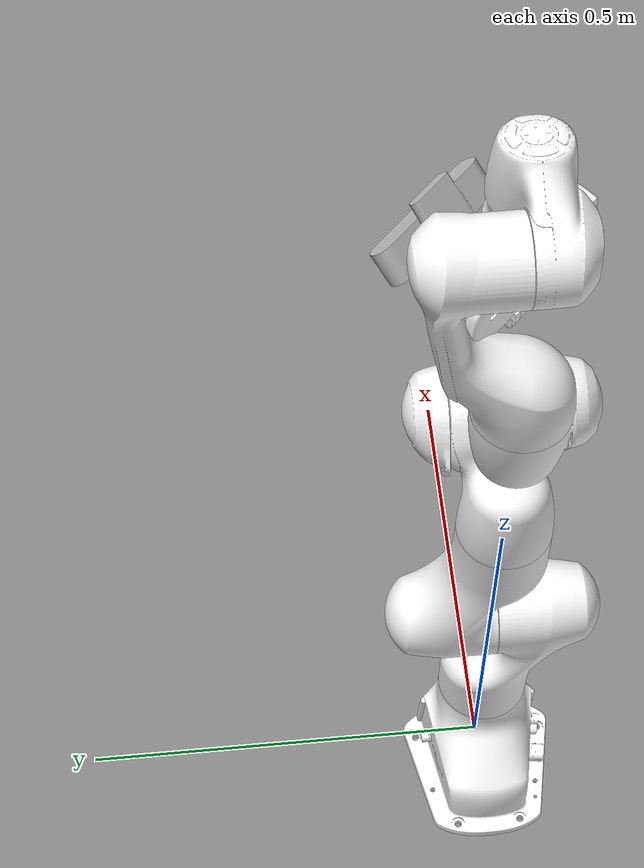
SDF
<?xml version="1.0"?>
<sdf version="1.7">
  <model name="panda_arm_namespaced">
    <!-- Fix To World -->
    <joint name="panda_joint_world" type="fixed">
        <parent>world</parent>
        <child>panda_link0</child>
    </joint>
    <!-- Arm Links -->
    <link name="panda_link0">
      <visual name="panda_link0_visual">
        <geometry>
          <mesh>
            <uri>meshes/visual/link0.dae</uri>
          </mesh>
        </geometry>
        <material>
          <diffuse>1.0 1.0 1.0</diffuse>
          <specular>1.0 1.0 1.0</specular>
          <pbr>
            <metal>
              <albedo_map>materials/textures/link0_link0_BaseColor.png</albedo_map>
              <normal_map>materials/textures/link0_link0_Normal.png</normal_map>
              <metalness_map>materials/textures/link0_link0_Metallic.png</metalness_map>
              <roughness_map>materials/textures/link0_link0_Roughness.png</roughness_map>
              <environment_map>https://fuel.ignitionrobotics.org/1.0/openrobotics/models/Reflective table/1/files/materials/textures/DepotEnvMap.dds</environment_map>
            </metal>
          </pbr>
        </material>
      </visual>
      <collision name="panda_link0_collision">
          <geometry>
              <mesh>
                  <uri>meshes/collision/link0.stl</uri>
              </mesh>
          </geometry>
          <surface>
              <friction>
                  <ode>
                      <mu>1.05</mu>
                      <mu2>1.05</mu2>
                  </ode>
              </friction>
          </surface>
      </collision>
      <inertial>
          <pose>-0.025566 -2.87883e-05 0.057332 0 0 0</pose>
          <mass>2.814271300104062</mass>
          <inertia>
              <ixx>0.0075390636364814695</ixx>
              <iyy>0.010508017427382959</iyy>
              <izz>0.009864933638708275</izz>
              <ixy>-1.5053124574783335e-05</ixy>
              <ixz>-0.0012144328835738973</ixz>
              <iyz>1.0434803501032979e-05</iyz>
          </inertia>
      </inertial>
    </link>
    <link name="panda_link1">
        <pose relative_to="panda_joint1">0 0 0 0 0 0</pose>
        <visual name="panda_link1_visual">
            <geometry>
                <mesh>
                    <uri>meshes/visual/link1.dae</uri>
                </mesh>
            </geometry>
        <material>
          <diffuse>1.0 1.0 1.0</diffuse>
          <specular>1.0 1.0 1.0</specular>
          <pbr>
            <metal>
              <albedo_map>materials/textures/link1_link1_BaseColor.png</albedo_map>
              <normal_map>materials/textures/link1_link1_Normal.png</normal_map>
              <roughness_map>materials/textures/link1_link1_Roughness.png</roughness_map>
              <environment_map>https://fuel.ignitionrobotics.org/1.0/openrobotics/models/Reflective table/1/files/materials/textures/DepotEnvMap.dds</environment_map>
              <metalness>0.1</metalness>
            </metal>
          </pbr>
        </material>
        </visual>
        <collision name="panda_link1_collision">
            <geometry>
                <mesh>
                    <uri>meshes/collision/link1.stl</uri>
                </mesh>
            </geometry>
            <surface>
                <friction>
                    <ode>
                        <mu>1.05</mu>
                        <mu2>1.05</mu2>
                    </ode>
                </friction>
            </surface>
        </collision>
        <inertial>
            <pose>-3.72212e-09 -0.0324958 -0.0675818 0 0 0</pose>
            <mass>2.6433170427227215</mass>
            <inertia>
                <ixx>0.017405076982879724</ixx>
                <iyy>0.015352077935781732</iyy>
                <izz>0.005987891663073857</izz>
                <ixy>-8.687986369621078e-09</ixy>
                <ixz>-1.6277819062920423e-08</ixz>
                <iyz>0.004510855959102245</iyz>
            </inertia>
        </inertial>
    </link>
    <link name="panda_link2">
        <pose relative_to="panda_joint2">0 0 0 0 0 0</pose>
        <visual name="panda_link2_visual">
            <geometry>
                <mesh>
                    <uri>meshes/visual/link2.dae</uri>
                </mesh>
            </geometry>
        <material>
          <diffuse>1.0 1.0 1.0</diffuse>
          <specular>1.0 1.0 1.0</specular>
          <pbr>
            <metal>
              <albedo_map>materials/textures/link2_link2_BaseColor.png</albedo_map>
              <normal_map>materials/textures/link2_link2_Normal.png</normal_map>
              <roughness_map>materials/textures/link2_link2_Roughness.png</roughness_map>
              <environment_map>https://fuel.ignitionrobotics.org/1.0/openrobotics/models/Reflective table/1/files/materials/textures/DepotEnvMap.dds</environment_map>
              <metalness>0.1</metalness>
            </metal>
          </pbr>
        </material>
        </visual>
        <collision name="panda_link2_collision">
            <geometry>
                <mesh>
                    <uri>meshes/collision/link2.stl</uri>
                </mesh>
            </geometry>
            <surface>
                <friction>
                    <ode>
                        <mu>1.05</mu>
                        <mu2>1.05</mu2>
                    </ode>
                </friction>
            </surface>
        </collision>
        <inertial>
            <pose>3.17833e-07 -0.06861 0.0322285 0 0 0</pose>
            <mass>2.6652755331661186</mass>
            <inertia>
                <ixx>0.01778694005635383</ixx>
                <iyy>0.006044133867952844</iyy>
                <izz>0.01571095500455695</izz>
                <ixy>8.70635625879119e-08</ixy>
                <ixz>3.752072058394008e-08</ixz>
                <iyz>-0.004599490295490376</iyz>
            </inertia>
        </inertial>
    </link>
    <link name="panda_link3">
        <pose relative_to="panda_joint3">0 0 0 0 0 0</pose>
        <visual name="panda_link3_visual">
            <geometry>
                <mesh>
                    <uri>meshes/visual/link3.dae</uri>
                </mesh>
            </geometry>
        <material>
          <diffuse>1.0 1.0 1.0</diffuse>
          <specular>1.0 1.0 1.0</specular>
          <pbr>
            <metal>
              <albedo_map>materials/textures/link3_link3_BaseColor.png</albedo_map>
              <normal_map>materials/textures/link3_link3_Normal.png</normal_map>
              <roughness_map>materials/textures/link3_link3_Roughness.png</roughness_map>
              <environment_map>https://fuel.ignitionrobotics.org/1.0/openrobotics/models/Reflective table/1/files/materials/textures/DepotEnvMap.dds</environment_map>
              <metalness>0.1</metalness>
            </metal>
          </pbr>
        </material>
        </visual>
        <collision name="panda_link3_collision">
            <geometry>
                <mesh>
                    <uri>meshes/collision/link3.stl</uri>
                </mesh>
            </geometry>
            <surface>
                <friction>
                    <ode>
                        <mu>1.05</mu>
                        <mu2>1.05</mu2>
                    </ode>
                </friction>
            </surface>
        </collision>
        <inertial>
            <pose>0.0469893 0.0316374 -0.031704 0 0 0</pose>
            <mass>2.3293714829045733</mass>
            <inertia>
                <ixx>0.0075496764161139766</ixx>
                <iyy>0.009680676080191398</iyy>
                <izz>0.007944557422008086</izz>
                <ixy>-0.0024320464513492225</ixy>
                <ixz>-0.003250815048103007</ixz>
                <iyz>-0.0021316282421730694</iyz>
            </inertia>
        </inertial>
    </link>
    <link name="panda_link4">
        <pose relative_to="panda_joint4">0 0 0 0 0 0</pose>
        <visual name="panda_link4_visual">
            <geometry>
                <mesh>
                    <uri>meshes/visual/link4.dae</uri>
                </mesh>
            </geometry>
        <material>
          <diffuse>1.0 1.0 1.0</diffuse>
          <specular>1.0 1.0 1.0</specular>
          <pbr>
            <metal>
              <albedo_map>materials/textures/link4_link4_BaseColor.png</albedo_map>
              <normal_map>materials/textures/link4_link4_Normal.png</normal_map>
              <roughness_map>materials/textures/link4_link4_Roughness.png</roughness_map>
              <environment_map>https://fuel.ignitionrobotics.org/1.0/openrobotics/models/Reflective table/1/files/materials/textures/DepotEnvMap.dds</environment_map>
              <metalness>0.1</metalness>
            </metal>
          </pbr>
        </material>
        </visual>
        <collision name="panda_link4_collision">
            <geometry>
                <mesh>
                    <uri>meshes/collision/link4.stl</uri>
                </mesh>
            </geometry>
            <surface>
                <friction>
                    <ode>
                        <mu>1.05</mu>
                        <mu2>1.05</mu2>
                    </ode>
                </friction>
            </surface>
        </collision>
        <inertial>
            <pose>-0.0360505 0.0337069 0.0319019 0 0 0</pose>
            <mass>2.3104763646281508</mass>
            <inertia>
                <ixx>0.007764568814864828</ixx>
                <iyy>0.008015776929980149</iyy>
                <izz>0.009955882308071066</izz>
                <ixy>0.003371475204045935</ixy>
                <ixz>-0.002343621113168248</ixz>
                <iyz>0.0022917526161470624</iyz>
            </inertia>
        </inertial>
    </link>
    <link name="panda_link5">
        <pose relative_to="panda_joint5">0 0 0 0 0 0</pose>
        <visual name="panda_link5_visual">
            <geometry>
                <mesh>
                    <uri>meshes/visual/link5.dae</uri>
                </mesh>
            </geometry>
        <material>
          <diffuse>1.0 1.0 1.0</diffuse>
          <specular>1.0 1.0 1.0</specular>
          <pbr>
            <metal>
              <albedo_map>materials/textures/link5_link5_BaseColor.png</albedo_map>
              <normal_map>materials/textures/link5_link5_Normal.png</normal_map>
              <roughness_map>materials/textures/link5_link5_Roughness.png</roughness_map>
              <environment_map>https://fuel.ignitionrobotics.org/1.0/openrobotics/models/Reflective table/1/files/materials/textures/DepotEnvMap.dds</environment_map>
              <metalness>0.1</metalness>
            </metal>
          </pbr>
        </material>
        </visual>
        <collision name="panda_link5_collision">
            <geometry>
                <mesh>
                    <uri>meshes/collision/link5.stl</uri>
                </mesh>
            </geometry>
            <surface>
                <friction>
                    <ode>
                        <mu>1.05</mu>
                        <mu2>1.05</mu2>
                    </ode>
                </friction>
            </surface>
        </collision>
        <inertial>
            <pose>-6.12525e-06 0.0610427 -0.104176 0 0 0</pose>
            <mass>2.6226426154892004</mass>
            <inertia>
                <ixx>0.029070538014399377</ixx>
                <iyy>0.027638529986528795</iyy>
                <izz>0.004251111234400737</izz>
                <ixy>6.208738268725568e-07</ixy>
                <ixz>-1.0059151925023392e-05</ixz>
                <iyz>-0.007424306477850814</iyz>
            </inertia>
        </inertial>
    </link>
    <link name="panda_link6">
        <pose relative_to="panda_joint6">0 0 0 0 0 0</pose>
        <visual name="panda_link6_visual">
            <geometry>
                <mesh>
                    <uri>meshes/visual/link6.dae</uri>
                </mesh>
            </geometry>
        <material>
          <diffuse>1.0 1.0 1.0</diffuse>
          <specular>1.0 1.0 1.0</specular>
          <pbr>
            <metal>
              <albedo_map>materials/textures/link6_link6_BaseColor.png</albedo_map>
              <normal_map>materials/textures/link6_link6_Normal.png</normal_map>
              <roughness_map>materials/textures/link6_link6_Roughness.png</roughness_map>
              <environment_map>https://fuel.ignitionrobotics.org/1.0/openrobotics/models/Reflective table/1/files/materials/textures/DepotEnvMap.dds</environment_map>
              <metalness>0.1</metalness>
            </metal>
          </pbr>
        </material>
        </visual>
        <collision name="panda_link6_collision">
            <geometry>
                <mesh>
                    <uri>meshes/collision/link6.stl</uri>
                </mesh>
            </geometry>
            <surface>
                <friction>
                    <ode>
                        <mu>1.05</mu>
                        <mu2>1.05</mu2>
                    </ode>
                </friction>
            </surface>
        </collision>
        <inertial>
            <pose>0.051051 0.00910797 0.0106343 0 0 0</pose>
            <mass>1.5025804886626795</mass>
            <inertia>
                <ixx>0.002940555801469018</ixx>
                <iyy>0.00392105201248677</iyy>
                <izz>0.0054115603870960195</izz>
                <ixy>-0.00042391108351381507</ixy>
                <ixz>0.000610007735338717</ixz>
                <iyz>0.00012647545430836214</iyz>
            </inertia>
        </inertial>
    </link>
    <link name="panda_link7">
        <pose relative_to="panda_joint7">0 0 0 0 0 0</pose>
        <visual name="panda_link7_visual">
            <geometry>
                <mesh>
                    <uri>meshes/visual/link7.dae</uri>
                </mesh>
            </geometry>
        <material>
          <diffuse>1.0 1.0 1.0</diffuse>
          <specular>1.0 1.0 1.0</specular>
          <pbr>
            <metal>
              <albedo_map>materials/textures/link7_link7_BaseColor.png</albedo_map>
              <normal_map>materials/textures/link7_link7_Normal.png</normal_map>
              <metalness_map>materials/textures/link7_link7_Metallic.png</metalness_map>
              <roughness_map>materials/textures/link7_link7_Roughness.png</roughness_map>
              <environment_map>https://fuel.ignitionrobotics.org/1.0/openrobotics/models/Reflective table/1/files/materials/textures/DepotEnvMap.dds</environment_map>
            </metal>
          </pbr>
        </material>
        </visual>
        <collision name="panda_link7_collision">
            <geometry>
                <mesh>
                    <uri>meshes/collision/link7.stl</uri>
                </mesh>
            </geometry>
            <surface>
                <friction>
                    <ode>
                        <mu>1.05</mu>
                        <mu2>1.05</mu2>
                    </ode>
                </friction>
            </surface>
        </collision>
        <inertial>
            <pose>0.0109695 0.0107965 0.0650412 0 0 0</pose>
            <mass>0.5237668134788256</mass>
            <inertia>
                <ixx>0.0008621467959726535</ixx>
                <iyy>0.0008613100184801048</iyy>
                <izz>0.0006961139396618219</izz>
                <ixy>-0.00011871071570425467</ixy>
                <ixz>3.866602604509339e-05</ixz>
                <iyz>-9.057841649422724e-05</iyz>
            </inertia>
        </inertial>
    </link>
    <!-- Arm Joints -->
    <joint name="panda_joint1" type="revolute">
        <pose relative_to="panda_link0">0 0 0.333 0 0 0</pose>
        <parent>panda_link0</parent>
        <child>panda_link1</child>
        <axis>
            <xyz>0 0 1</xyz>
            <limit>
                <effort>87</effort>
                <lower>-2.897246558310587</lower>
                <upper>2.897246558310587</upper>
                <velocity>2.617993877991494</velocity>
            </limit>
            <dynamics>
                <spring_reference>0</spring_reference>
                <spring_stiffness>0</spring_stiffness>
                <damping>21.75</damping>
                <friction>3.48</friction>
            </dynamics>
        </axis>
    </joint>
    <joint name="panda_joint2" type="revolute">
        <pose relative_to="panda_link1">0 0 0 -1.570796326794897 0 0</pose>
        <parent>panda_link1</parent>
        <child>panda_link2</child>
        <axis>
            <xyz>0 0 1</xyz>
            <limit>
                <effort>87</effort>
                <lower>-1.762782544514273</lower>
                <upper>1.762782544514273</upper>
                <velocity>2.617993877991494</velocity>
            </limit>
            <dynamics>
                <spring_reference>0</spring_reference>
                <spring_stiffness>0</spring_stiffness>
                <damping>21.75</damping>
                <friction>3.48</friction>
            </dynamics>
        </axis>
    </joint>
    <joint name="panda_joint3" type="revolute">
        <pose relative_to="panda_link2">0 -0.316 0 1.570796326794897 0 0</pose>
        <parent>panda_link2</parent>
        <child>panda_link3</child>
        <axis>
            <xyz>0 0 1</xyz>
            <limit>
                <effort>87</effort>
                <lower>-2.897246558310587</lower>
                <upper>2.897246558310587</upper>
                <velocity>2.617993877991494</velocity>
            </limit>
            <dynamics>
                <spring_reference>0</spring_reference>
                <spring_stiffness>0</spring_stiffness>
                <damping>21.75</damping>
                <friction>3.48</friction>
            </dynamics>
        </axis>
    </joint>
    <joint name="panda_joint4" type="revolute">
        <pose relative_to="panda_link3">0.0825 0 0 1.570796326794897 0 0</pose>
        <parent>panda_link3</parent>
        <child>panda_link4</child>
        <axis>
            <xyz>0 0 1</xyz>
            <limit>
                <effort>87</effort>
                <lower>-3.07177948351002</lower>
                <upper>-0.06981317007977318</upper>
                <velocity>2.617993877991494</velocity>
            </limit>
            <dynamics>
                <spring_reference>0</spring_reference>
                <spring_stiffness>0</spring_stiffness>
                <damping>21.75</damping>
                <friction>3.48</friction>
            </dynamics>
        </axis>
    </joint>
    <joint name="panda_joint5" type="revolute">
        <pose relative_to="panda_link4">-0.0825 0.384 0 -1.570796326794897 0 0</pose>
        <parent>panda_link4</parent>
        <child>panda_link5</child>
        <axis>
            <xyz>0 0 1</xyz>
            <limit>
                <effort>12</effort>
                <lower>-2.897246558310587</lower>
                <upper>2.897246558310587</upper>
                <velocity>3.141592653589793</velocity>
            </limit>
            <dynamics>
                <spring_reference>0</spring_reference>
                <spring_stiffness>0</spring_stiffness>
                <damping>3.0</damping>
                <friction>0.48</friction>
            </dynamics>
        </axis>
    </joint>
    <joint name="panda_joint6" type="revolute">
        <pose relative_to="panda_link5">0 0 0 1.570796326794897 0 0</pose>
        <parent>panda_link5</parent>
        <child>panda_link6</child>
        <axis>
            <xyz>0 0 1</xyz>
            <limit>
                <effort>12</effort>
                <lower>-0.0174532925199433</lower>
                <upper>3.752457891787809</upper>
                <velocity>3.141592653589793</velocity>
            </limit>
            <dynamics>
                <spring_reference>0</spring_reference>
                <spring_stiffness>0</spring_stiffness>
                <damping>3.0</damping>
                <friction>0.48</friction>
            </dynamics>
        </axis>
    </joint>
    <joint name="panda_joint7" type="revolute">
        <pose relative_to="panda_link6">0.088 0 0 1.570796326794897 0 0</pose>
        <parent>panda_link6</parent>
        <child>panda_link7</child>
        <axis>
            <xyz>0 0 1</xyz>
            <limit>
                <effort>12</effort>
                <lower>-2.897246558310587</lower>
                <upper>2.897246558310587</upper>
                <velocity>3.141592653589793</velocity>
            </limit>
            <dynamics>
                <spring_reference>0</spring_reference>
                <spring_stiffness>0</spring_stiffness>
                <damping>3.0</damping>
                <friction>0.48</friction>
            </dynamics>
        </axis>
    </joint>
    <!-- Arm-Hand Fixed Joint -->
    <joint name="panda_hand_joint" type="fixed">
        <pose relative_to="panda_link7">0 0 0.107 0 0 -0.7853981633974483</pose>
        <parent>panda_link7</parent>
        <child>panda_hand</child>
    </joint>
    <!-- Hand Links -->
    <link name="panda_hand">
      <pose relative_to="panda_hand_joint">0 0 0 0 0 0</pose>
      <visual name="panda_hand_visual">
        <pose>0 0 0 0 0 0</pose>
        <geometry>
          <mesh>
            <uri>meshes/visual/hand.dae</uri>
          </mesh>
        </geometry>
        <material>
          <diffuse>1.0 1.0 1.0</diffuse>
          <specular>1.0 1.0 1.0</specular>
          <pbr>
            <metal>
              <albedo_map>materials/textures/hand_hand_BaseColor.png</albedo_map>
              <normal_map>materials/textures/hand_hand_Normal.png</normal_map>
              <roughness_map>materials/textures/hand_hand_Roughness.png</roughness_map>
              <environment_map>https://fuel.ignitionrobotics.org/1.0/openrobotics/models/Reflective table/1/files/materials/textures/DepotEnvMap.dds</environment_map>
              <metalness>0.1</metalness>
            </metal>
          </pbr>
        </material>
        </visual>
        <collision name="panda_hand_collision">
          <pose>0 0 0 0 0 0</pose>
          <geometry>
            <mesh>
              <uri>meshes/collision/hand.stl</uri>
            </mesh>
          </geometry>
          <surface>
              <friction>
                  <ode>
                      <mu>1.05</mu>
                      <mu2>1.05</mu2>
                  </ode>
              </friction>
          </surface>
        </collision>
        <inertial>
            <pose>-6.7624e-06 0.00152435 0.0275912 0 0 0</pose>
            <mass>0.14060765127978503</mass>
            <inertia>
                <ixx>0.0005365450414352072</ixx>
                <iyy>7.70511954783727e-05</iyy>
                <izz>0.0004938176882694914</izz>
                <ixy>1.7911952957732454e-08</ixy>
                <ixz>-2.320071910601251e-08</ixz>
                <iyz>4.681149945315967e-08</iyz>
            </inertia>
        </inertial>
    </link>
    <link name="panda_leftfinger">
        <pose relative_to="panda_finger_joint1">0 0 0 0 0 0</pose>
        <visual name="panda_leftfinger_visual">
            <geometry>
                <mesh>
                    <uri>meshes/visual/finger.dae</uri>
                </mesh>
            </geometry>
        <material>
          <diffuse>1.0 1.0 1.0</diffuse>
          <specular>1.0 1.0 1.0</specular>
          <pbr>
            <metal>
              <albedo_map>materials/textures/finger_finger_BaseColor.png</albedo_map>
              <normal_map>materials/textures/finger_finger_Normal.png</normal_map>
              <metalness_map>materials/textures/finger_finger_Metallic.png</metalness_map>
              <roughness_map>materials/textures/finger_finger_Roughness.png</roughness_map>
              <environment_map>https://fuel.ignitionrobotics.org/1.0/openrobotics/models/Reflective table/1/files/materials/textures/DepotEnvMap.dds</environment_map>
            </metal>
          </pbr>
        </material>
        </visual>
        <collision name="panda_leftfinger_collision">
            <geometry>
                <mesh>
                    <uri>meshes/collision/finger.stl</uri>
                </mesh>
            </geometry>
            <surface>
                <friction>
                    <ode>
                        <mu>2.15</mu>
                        <mu2>2.15</mu2>
                    </ode>
                </friction>
            </surface>
        </collision>
        <inertial>
            <pose>-6.2561e-06 0.00227781 -0.0277116 0 0 0</pose>
            <mass>0.2238453537819424</mass>
            <inertia>
                <ixx>6.74804167363695e-05</ixx>
                <iyy>6.627189221641395e-05</iyy>
                <izz>1.550396267804825e-05</izz>
                <ixy>-4.1027443646025676e-09</ixy>
                <ixz>1.8693673970152995e-08</ixz>
                <iyz>1.1967548474390802e-05</iyz>
            </inertia>
        </inertial>
    </link>
    <link name="panda_rightfinger">
        <pose relative_to="panda_finger_joint2">0 0 0 0 0 0</pose>
        <visual name="panda_rightfinger_visual">
            <pose>0 0 0 0 0 3.141592653589793</pose>
            <geometry>
                <mesh>
                    <uri>meshes/visual/finger.dae</uri>
                </mesh>
            </geometry>
        <material>
          <diffuse>1.0 1.0 1.0</diffuse>
          <specular>1.0 1.0 1.0</specular>
          <pbr>
            <metal>
              <albedo_map>materials/textures/finger_finger_BaseColor.png</albedo_map>
              <normal_map>materials/textures/finger_finger_Normal.png</normal_map>
              <roughness_map>materials/textures/finger_finger_Roughness.png</roughness_map>
              <environment_map>https://fuel.ignitionrobotics.org/1.0/openrobotics/models/Reflective table/1/files/materials/textures/DepotEnvMap.dds</environment_map>
              <metalness>0.1</metalness>
            </metal>
          </pbr>
        </material>
        </visual>
        <collision name="panda_rightfinger_collision">
            <pose>0 0 0 0 0 3.141592653589793</pose>
            <geometry>
                <mesh>
                    <uri>meshes/collision/finger.stl</uri>
                </mesh>
            </geometry>
            <surface>
                <friction>
                    <ode>
                        <mu>2.15</mu>
                        <mu2>2.15</mu2>
                    </ode>
                </friction>
            </surface>
        </collision>
        <inertial>
            <pose>-6.2561e-06 0.00227781 -0.0277116 0 0 3.141592653589793</pose>
            <mass>0.2238453537819424</mass>
            <inertia>
                <ixx>6.74804167363695e-05</ixx>
                <iyy>6.627189221641395e-05</iyy>
                <izz>1.550396267804825e-05</izz>
                <ixy>-4.1027443646025676e-09</ixy>
                <ixz>1.8693673970152995e-08</ixz>
                <iyz>1.1967548474390802e-05</iyz>
            </inertia>
        </inertial>
    </link>
    <!-- Finger Joints -->
    <joint name="panda_finger_joint1" type="prismatic">
        <pose relative_to="panda_hand">0 0 0.0584 0 0 0</pose>
        <parent>panda_hand</parent>
        <child>panda_leftfinger</child>
        <axis>
            <xyz>0 1 0</xyz>
            <limit>
                <effort>20</effort>
                <lower>0.0</lower>
                <upper>0.04</upper>
                <velocity>0.2</velocity>
            </limit>
            <dynamics>
                <spring_reference>0</spring_reference>
                <spring_stiffness>0</spring_stiffness>
                <damping>10</damping>
                <friction>0.5</friction>
            </dynamics>
        </axis>
    </joint>
    <joint name="panda_finger_joint2" type="prismatic">
        <pose relative_to="panda_hand">0 0 0.0584 0 0 0</pose>
        <parent>panda_hand</parent>
        <child>panda_rightfinger</child>
        <axis>
            <xyz>0 -1 0</xyz>
            <limit>
                <effort>20</effort>
                <lower>0.0</lower>
                <upper>0.04</upper>
                <velocity>0.2</velocity>
            </limit>
            <dynamics>
                <spring_reference>0</spring_reference>
                <spring_stiffness>0</spring_stiffness>
                <damping>10</damping>
                <friction>0.5</friction>
            </dynamics>
        </axis>
    </joint>
    <!-- End-effector -->
    <link name="panda_link8">
        <pose relative_to="end_effector_frame_fixed_joint">0 0 0 0 0 0</pose>
    </link>
    <joint name="end_effector_frame_fixed_joint" type="fixed">
        <pose relative_to="panda_hand">0 0 0.103 0 0 0</pose>
        <parent>panda_hand</parent>
        <child>panda_link8</child>
    </joint>
    <link name="camera_mount">
        <pose relative_to="panda_link8_camera_mount">0 0 0 0 0 0</pose>
        <inertial>
            <pose>0.01 0 0.0245 0 0 1.5707963267948966</pose>
            <mass>0.3</mass>
            <inertia>
                <ixx>0.000150025</ixx>
                <ixy>0</ixy>
                <ixz>0</ixz>
                <iyy>0.00074065</iyy>
                <iyz>0</iyz>
                <izz>0.000770625</izz>
            </inertia>
        </inertial>
        <collision name="camera_mount_collision_top">
            <pose>0.02 0 0.034 0 0 1.5707963267948966</pose>
            <geometry>
                <box>
                    <size>0.165 0.040 0.030</size>
                </box>
            </geometry>
        </collision>
        <collision name="camera_mount_collision_base">
            <pose>0.01 0 0.00725 0 0 1.5707963267948966</pose>
            <geometry>
                <box>
                    <size>0.06 0.060 0.015</size>
                </box>
            </geometry>
        </collision>
        <visual name="camera_mount_visual">
            <pose>0 0 0 0 0 1.5707963267948966</pose>
            <geometry>
                <mesh>
                    <uri>model://rgbd_camera/meshes/3dCamera.DAE</uri>
                </mesh>
            </geometry>
        </visual>
        <sensor name="color_camera" type="camera">
            <pose>0 0 0 0 0 0</pose>
            <topic>/camera/color/image_raw</topic>
            <camera>
                <horizontal_fov>1.047</horizontal_fov>
                <image>
                    <width>640</width>
                    <height>480</height>
                    <format>R8G8B8</format>
                </image>
                <clip>
                    <near>0.03</near>
                    <far>100.0</far>
                </clip>
            </camera>
            <always_on>true</always_on>
            <update_rate>30</update_rate>
            <visualize>true</visualize>
        </sensor>
        <sensor name="rgbd_camera" type="rgbd_camera">
            <pose>0 0 0 0 0 0</pose>
            <topic>/camera/depth</topic>
            <camera>
                <horizontal_fov>1.047</horizontal_fov>
                <image>
                    <width>640</width>
                    <height>480</height>
                    <format>R8G8B8</format>
                </image>
                <clip>
                    <near>0.03</near>
                    <far>30.0</far>
                </clip>
            </camera>
            <always_on>true</always_on>
            <update_rate>15</update_rate>
            <visualize>false</visualize>
        </sensor>
        <sensor name="lidar_2d" type="gpu_lidar">
            <pose>0 0 0.035 0 0 0</pose>
            <topic>/scan</topic>
            <update_rate>20</update_rate>
            <lidar>
                <scan>
                    <horizontal>
                        <samples>720</samples>
                        <resolution>1</resolution>
                        <min_angle>-1.5707963267948966</min_angle>
                        <max_angle>1.5707963267948966</max_angle>
                    </horizontal>
                </scan>
                <range>
                    <min>0.08</min>
                    <max>12.0</max>
                    <resolution>0.01</resolution>
                </range>
            </lidar>
            <always_on>true</always_on>
            <visualize>true</visualize>
        </sensor>
        <sensor name="lidar_3d" type="gpu_lidar">
            <pose>0 0 0.055 0 0 0</pose>
            <topic>/lidar</topic>
            <update_rate>10</update_rate>
            <lidar>
                <scan>
                    <horizontal>
                        <samples>640</samples>
                        <resolution>1</resolution>
                        <min_angle>-1.3962634015954636</min_angle>
                        <max_angle>1.3962634015954636</max_angle>
                    </horizontal>
                    <vertical>
                        <samples>16</samples>
                        <resolution>1</resolution>
                        <min_angle>-0.2617993877991494</min_angle>
                        <max_angle>0.2617993877991494</max_angle>
                    </vertical>
                </scan>
                <range>
                    <min>0.08</min>
                    <max>20.0</max>
                    <resolution>0.01</resolution>
                </range>
            </lidar>
            <always_on>true</always_on>
            <visualize>false</visualize>
        </sensor>
        <sensor name="imu" type="imu">
            <pose>0 0 0.02 0 0 0</pose>
            <topic>/imu/data</topic>
            <always_on>true</always_on>
            <update_rate>100</update_rate>
            <visualize>false</visualize>
        </sensor>
    </link>
    <joint name="panda_link8_camera_mount" type="fixed">
        <pose relative_to="panda_link8">0.10 0 -0.10 0 -0.7853981633974483 3.141592653589793</pose>
        <parent>panda_link8</parent>
        <child>camera_mount</child>
    </joint>
    <plugin filename="gz-sim-joint-position-controller-system" name="gz::sim::systems::JointPositionController">
        <joint_name>panda_joint1</joint_name>
        <topic>/model/panda/joint/panda_joint1/0/cmd_pos</topic>
        <p_gain>50</p_gain>
        <d_gain>20</d_gain>
        <i_gain>0</i_gain>
        <i_min>-1</i_min>
        <i_max>1</i_max>
    </plugin>
    <plugin filename="gz-sim-joint-position-controller-system" name="gz::sim::systems::JointPositionController">
        <joint_name>panda_joint2</joint_name>
        <topic>/model/panda/joint/panda_joint2/0/cmd_pos</topic>
        <p_gain>10000</p_gain>
        <d_gain>500</d_gain>
        <i_gain>0</i_gain>
        <i_min>-1</i_min>
        <i_max>1</i_max>
    </plugin>
    <plugin filename="gz-sim-joint-position-controller-system" name="gz::sim::systems::JointPositionController">
        <joint_name>panda_joint3</joint_name>
        <topic>/model/panda/joint/panda_joint3/0/cmd_pos</topic>
        <p_gain>100</p_gain>
        <d_gain>10</d_gain>
        <i_gain>0</i_gain>
        <i_min>-1</i_min>
        <i_max>1</i_max>
    </plugin>
    <plugin filename="gz-sim-joint-position-controller-system" name="gz::sim::systems::JointPositionController">
        <joint_name>panda_joint4</joint_name>
        <topic>/model/panda/joint/panda_joint4/0/cmd_pos</topic>
        <p_gain>1000</p_gain>
        <d_gain>50</d_gain>
        <i_gain>0</i_gain>
        <i_min>-1</i_min>
        <i_max>1</i_max>
    </plugin>
    <plugin filename="gz-sim-joint-position-controller-system" name="gz::sim::systems::JointPositionController">
        <joint_name>panda_joint5</joint_name>
        <topic>/model/panda/joint/panda_joint5/0/cmd_pos</topic>
        <p_gain>100</p_gain>
        <d_gain>50</d_gain>
        <i_gain>0</i_gain>
        <i_min>-1</i_min>
        <i_max>1</i_max>
    </plugin>
    <plugin filename="gz-sim-joint-position-controller-system" name="gz::sim::systems::JointPositionController">
        <joint_name>panda_joint6</joint_name>
        <topic>/model/panda/joint/panda_joint6/0/cmd_pos</topic>
        <p_gain>100</p_gain>
        <d_gain>10</d_gain>
        <i_gain>0</i_gain>
        <i_min>-1</i_min>
        <i_max>1</i_max>
    </plugin>
    <plugin filename="gz-sim-joint-position-controller-system" name="gz::sim::systems::JointPositionController">
        <joint_name>panda_joint7</joint_name>
        <topic>/model/panda/joint/panda_joint7/0/cmd_pos</topic>
        <p_gain>10</p_gain>
        <d_gain>0.1</d_gain>
        <i_gain>0.5</i_gain>
        <i_min>-1</i_min>
        <i_max>1</i_max>
    </plugin>
    <plugin filename="gz-sim-joint-position-controller-system" name="gz::sim::systems::JointPositionController">
        <joint_name>panda_finger_joint1</joint_name>
        <topic>/model/panda/joint/panda_finger_joint1/0/cmd_pos</topic>
        <p_gain>100</p_gain>
        <d_gain>50</d_gain>
        <i_gain>0</i_gain>
        <i_min>-1</i_min>
        <i_max>1</i_max>
    </plugin>
    <plugin filename="gz-sim-joint-position-controller-system" name="gz::sim::systems::JointPositionController">
        <joint_name>panda_finger_joint2</joint_name>
        <topic>/model/panda/joint/panda_finger_joint2/0/cmd_pos</topic>
        <p_gain>100</p_gain>
        <d_gain>50</d_gain>
        <i_gain>0</i_gain>
        <i_min>-1</i_min>
        <i_max>1</i_max>
    </plugin>
    <plugin filename="gz-sim-pose-publisher-system" name="gz::sim::systems::PosePublisher">
        <publish_link_pose>true</publish_link_pose>
        <publish_sensor_pose>true</publish_sensor_pose>
        <publish_collision_pose>false</publish_collision_pose>
        <publish_visual_pose>false</publish_visual_pose>
        <publish_nested_model_pose>false</publish_nested_model_pose>
        <use_pose_vector_msg>true</use_pose_vector_msg>
    </plugin>
  </model>
</sdf>
